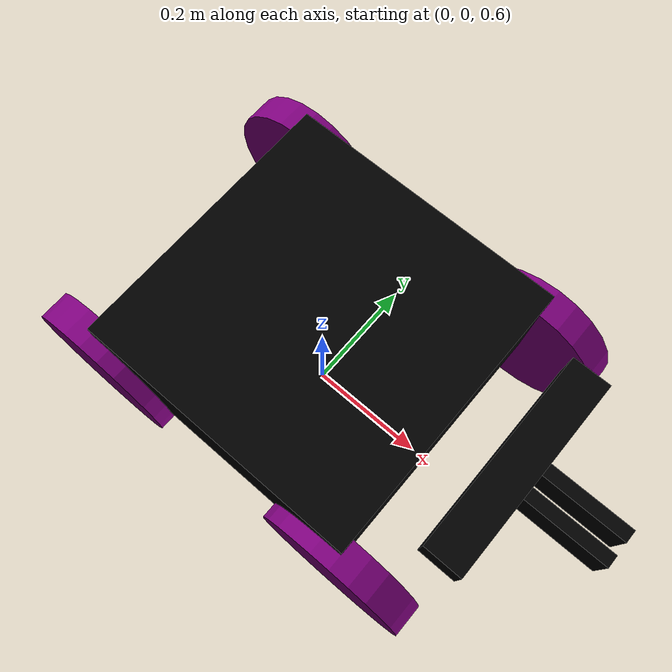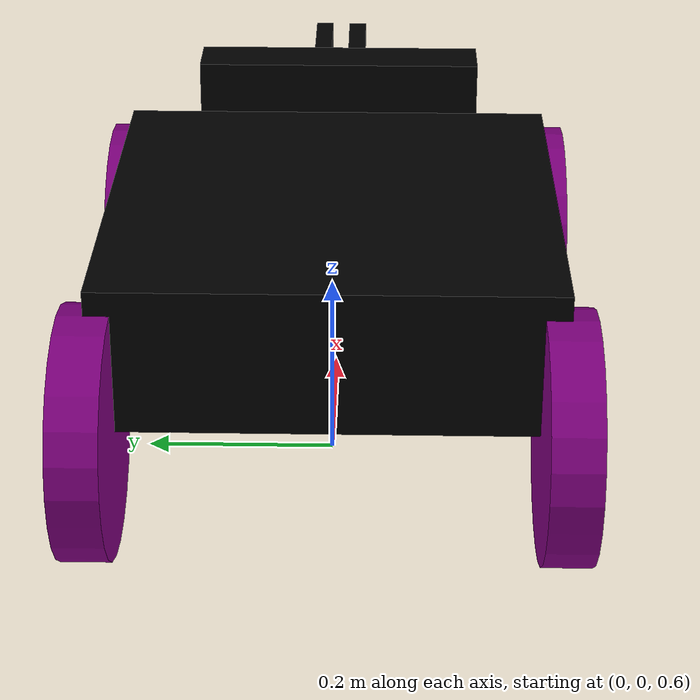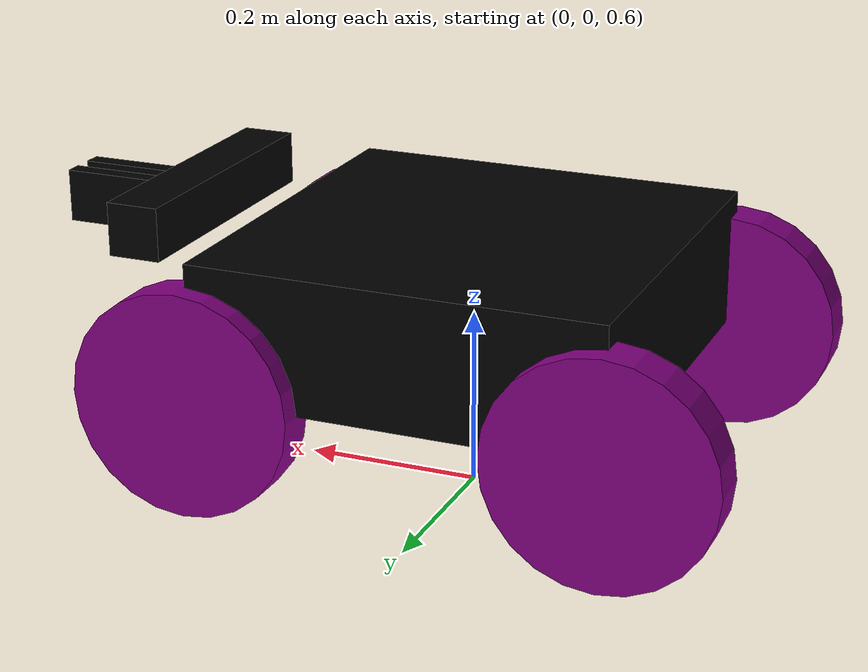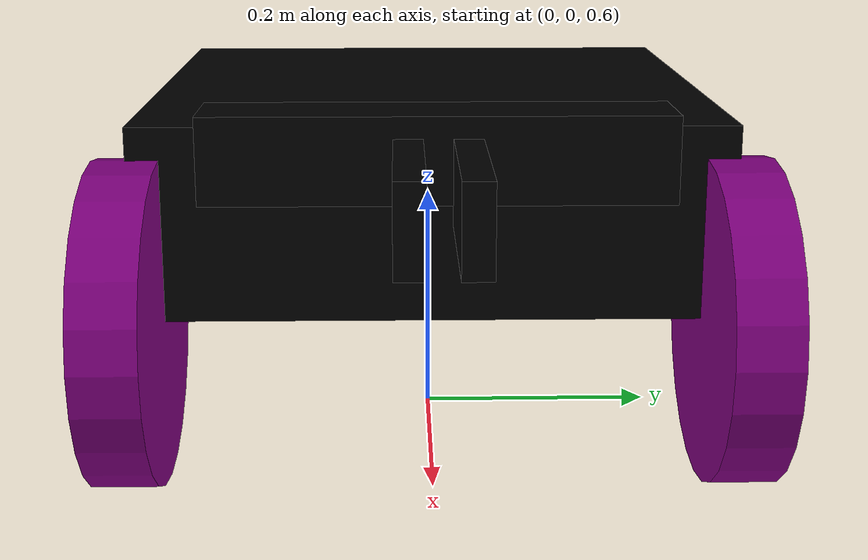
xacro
<?xml version="1.0"?>
<robot xmlns:xacro="http://www.ros.org/wiki/xacro" >

    <material name="white">
        <color rgba="1 1 1 1" />
    </material>

    <material name="orange">
        <color rgba="1 0.3 0.1 1"/>
    </material>

    <material name="blue">
        <color rgba="0.2 0.2 1 1"/>
    </material>

    <material name="black">
        <color rgba="0 0 0 1"/>
    </material>

    <material name="red">
        <color rgba="1 0 0 1"/>
    </material>

    <!-- สีเพิ่มเติม -->

    <material name="green">
        <color rgba="0 1 0 1"/>
    </material>

    <material name="yellow">
        <color rgba="1 1 0 1"/>
    </material>

    <material name="purple">
        <color rgba="0.5 0 0.5 1"/>
    </material>

    <material name="cyan">
        <color rgba="0 1 1 1"/>
    </material>

    <material name="gray">
        <color rgba="0.5 0.5 0.5 1"/>
    </material>

    <!-- BASE LINK -->

    <link name="base_link"/>

    <joint name="chassis_joint" type="fixed">
        <parent link="base_link"/>
        <child link="chassis"/>
        <origin xyz="0 0 0.75" rpy="0 0 0"/>
    </joint>

    <link name="chassis">
        <visual>
            <origin xyz="0 0 0.075" rpy="0 0 0"/>
            <geometry>
                <box size="0.46 0.46 0.15"/>
            </geometry>
            <material name="black"/>
        </visual>
        <collision>
            <origin xyz="0 0 0.075" rpy="0 0 0"/>
            <geometry>
                <box size="0.46 0.46 0.15"/>
            </geometry>
        </collision>
        <xacro:inertial_box mass="0.1" x="0.46" y="0.46" z="0.15">
            <origin xyz="0 0 0.075" rpy="0 0 0"/>
        </xacro:inertial_box>
    </link>
    <gazebo reference="chassis">
        <material>Gazebo/black</material>
    </gazebo>

    <!-- BASE_FOOTPRINT LINK -->
    <joint name="base_footprint_joint" type="fixed">
        <parent link="base_link"/>
        <child link="base_footprint"/>
        <origin xyz="0 0 0" rpy="0 0 0"/>
    </joint>

    <link name="base_footprint">
    </link>

    <!-- LEFT FRONT WHEEL -->
    <joint name="left_wheel_joint" type="continuous">
        <parent link="chassis"/>
        <child link="left_wheel"/>
        <origin xyz="0.23 0.23 0" rpy="-1.5708 0 0"/>
        <axis xyz="0 0 1"/>
        <dynamics damping="0.5" friction="0.8"/>
    </joint>

    <link name="left_wheel">
        <visual>
            <geometry>
                <cylinder length="0.05" radius="0.125" />
            </geometry>
            <material name="purple"/>
        </visual>
        <collision>
            <geometry>
                <cylinder length="0.05" radius="0.125" />
            </geometry>
        </collision>
        <xacro:inertial_cylinder mass="0.1" length="0.05" radius="0.125">
            <origin xyz="0 0 0" rpy="0 0 0"/>
        </xacro:inertial_cylinder>
    </link>

    <gazebo reference="left_wheel">
        <material>Gazebo/purple</material>
        <mu1>0.8</mu1>
        <mu2>0.6</mu2>
        <plugin name="wheel_surface" filename="libgazebo_ros_surface_plugin.so">
            <rolling_resistance value="0.02"/>
            <friction value="0.9"/>
        </plugin>
    </gazebo>

    <!-- LEFT REAR WHEEL -->
    <joint name="left_wheel1_joint" type="continuous">
        <parent link="chassis"/>
        <child link="left_wheel1"/>
        <origin xyz="0.23 -0.23 0" rpy="-1.5708 0 0"/>
        <axis xyz="0 0 1"/>
        <dynamics damping="0.5" friction="0.8"/>
    </joint>

    <link name="left_wheel1">
        <visual>
            <geometry>2
                <cylinder length="0.05" radius="0.125" />
            </geometry>
            <material name="purple"/>
        </visual>
        <collision>
            <geometry>
                <cylinder length="0.05" radius="0.125" />
            </geometry>
        </collision>
        <xacro:inertial_cylinder mass="0.1" length="0.05" radius="0.125">
            <origin xyz="0 0 0" rpy="0 0 0"/>
        </xacro:inertial_cylinder>
    </link>

    <gazebo reference="left_wheel1">
        <material>Gazebo/purple</material>
        <mu1>0.8</mu1>
        <mu2>0.6</mu2>
        <plugin name="wheel_surface" filename="libgazebo_ros_surface_plugin.so">
            <rolling_resistance value="0.02"/>
            <friction value="0.9"/>
        </plugin>
    </gazebo>

    <!-- RIGHT FRONT WHEEL -->
    <joint name="right_wheel_joint" type="continuous">
        <parent link="chassis"/>
        <child link="right_wheel"/>
        <origin xyz="-0.23 0.23 0" rpy="1.5708 0 0"/>
        <axis xyz="0 0 -1"/>
        <dynamics damping="0.5" friction="0.8"/>
    </joint>

    <link name="right_wheel">
        <visual>
            <geometry>
                <cylinder length="0.05" radius="0.125" />
            </geometry>
            <material name="purple"/>
        </visual>
        <collision>
            <geometry>
                <cylinder length="0.05" radius="0.125" />
            </geometry>
        </collision>
        <xacro:inertial_cylinder mass="0.1" length="0.05" radius="0.125">
            <origin xyz="0 0 0" rpy="0 0 0"/>
        </xacro:inertial_cylinder>
    </link>

    <gazebo reference="right_wheel">
        <material>Gazebo/purple</material>
        <mu1>0.8</mu1>
        <mu2>0.6</mu2>
        <plugin name="wheel_surface" filename="libgazebo_ros_surface_plugin.so">
            <rolling_resistance value="0.02"/>
            <friction value="0.9"/>
        </plugin>
    </gazebo>

    <!-- RIGHT REAR WHEEL -->
    <joint name="right_wheel1_joint" type="continuous">
        <parent link="chassis"/>
        <child link="right_wheel1"/>
        <origin xyz="-0.23 -0.23 0" rpy="1.5708 0 0"/>
        <axis xyz="0 0 -1"/>
        <dynamics damping="0.5" friction="0.8"/>
    </joint>

    <link name="right_wheel1">
        <visual>
            <geometry>
                <cylinder length="0.05" radius="0.125" />
            </geometry>
            <material name="purple"/>
        </visual>
        <collision>
            <geometry>
                <cylinder length="0.05" radius="0.125" />
            </geometry>
        </collision>
        <xacro:inertial_cylinder mass="0.1" length="0.05" radius="0.125">
            <origin xyz="0 0 0" rpy="0 0 0"/>
        </xacro:inertial_cylinder>
    </link>

    <gazebo reference="right_wheel1">
        <material>Gazebo/purple</material>
        <mu1>0.8</mu1>
        <mu2>0.6</mu2>
        <plugin name="wheel_surface" filename="libgazebo_ros_surface_plugin.so">
            <rolling_resistance value="0.02"/>
            <friction value="0.9"/>
        </plugin>
    </gazebo>

    <!-- CASTER WHEEL -->

    <joint name="caster_wheel_joint" type="fixed">
        <parent link="chassis"/>
        <child link="caster_wheel"/>
        <origin xyz="0 0 0" rpy="0 0 0"/>
    </joint>

    <link name="caster_wheel">
        <visual>
            <geometry>
                <sphere radius="0.0" />
            </geometry>
            <material name="blue"/>
        </visual>
        <collision>
            <geometry>
                <sphere radius="0.0" />
            </geometry>
        </collision>
        <xacro:inertial_sphere mass="0.1" radius="0.0">
            <origin xyz="0 0 0" rpy="0 0 0"/>
        </xacro:inertial_sphere>
    </link>
    <gazebo reference="caster_wheel">
        <material>Gazebo/Blue</material>
        <mu1 value="0.5"/>
        <mu2 value="0.5"/>
    </gazebo>

    <!-- GRIPPER BASE -->

    <joint name="gripper_base_joint" type="prismatic">
        <parent link="chassis"/>
        <child link="gripper_base"/>
        <origin xyz="0.1 0 0.075" rpy="0 0 0"/>
        <axis xyz="0 0 1"/>
        <limit lower="-0.25" upper="0.1" effort="10.0" velocity="0.15"/>
        <dynamics damping="0.005" friction="2.0"/>
    </joint>

    <link name="gripper_base">
        <visual>
            <origin xyz="0.23 0 0.075" rpy="0 0 0"/>
            <geometry>
                <box size="0.06 0.32 0.06"/>
            </geometry>
            <material name="black"/>
        </visual>
        <collision>
            <origin xyz="0.23 0 0.075" rpy="0 0 0"/>
            <geometry>
                <box size="0.06 0.32 0.06"/>
            </geometry>
        </collision>
        <xacro:inertial_box mass="0.05" x="0.06" y="0.33" z="0.06">
            <origin xyz="0.23 0 0.075" rpy="0 0 0"/>
        </xacro:inertial_box>
    </link>
    <gazebo reference="gripper_base">
        <material>Gazebo/black</material>
    </gazebo>

        <!-- GRIPPER RIGHT ARM -->

    <joint name="gripper_R_joint" type="prismatic">
        <parent link="gripper_base"/>
        <child link="gripper_R"/>
        <origin xyz="0.16 0.01 0.03" rpy="0 0 0"/>
        <axis xyz="0 1 0"/>
        <limit lower="0" upper="0.16" effort="10.0" velocity="0.5"/>
        <dynamics damping="0.05" friction="1.0"/>
    </joint>

    <link name="gripper_R">
        <visual>
            <origin xyz="0.16 0.01 0.03" rpy="0 0 0"/>
            <geometry>
                <box size="0.14 0.02 0.06"/>
            </geometry>
            <material name="black"/>
        </visual>
        <collision>
            <origin xyz="0.16 0.01 0.03" rpy="0 0 0"/>
            <geometry>
                <box size="0.14 0.02 0.06"/>
            </geometry>
        </collision>
        <xacro:inertial_box mass="0.05" x="0.14" y="0.02" z="0.06">
            <origin xyz="0.16 0.01 0.03" rpy="0 0 0"/>
        </xacro:inertial_box>
    </link>
    <gazebo reference="gripper_R">
        <material>Gazebo/black</material>
    </gazebo>

        <!-- GRIPPER LEFT ARM -->

    <joint name="gripper_L_joint" type="prismatic">
        <parent link="gripper_base"/>
        <child link="gripper_L"/>
        <origin xyz="0.16 -0.01 0.03" rpy="0 0 0"/>
        <axis xyz="0 -1 0"/>
        <limit lower="0" upper="0.16" effort="10.0" velocity="0.5"/>
        <dynamics damping="0.05" friction="1.0"/>
    </joint>

    <link name="gripper_L">
        <visual>
            <origin xyz="0.16 -0.01 0.03" rpy="0 0 0"/>
            <geometry>
                <box size="0.14 0.02 0.06"/>
            </geometry>
            <material name="black"/>
        </visual>
        <collision>
            <origin xyz="0.16 -0.01 0.03" rpy="0 0 0"/>
            <geometry>
                <box size="0.14 0.02 0.06"/>
            </geometry>
        </collision>
        <xacro:inertial_box mass="0.05" x="0.14" y="0.02" z="0.06">
            <origin xyz="0.16 -0.01 0.03" rpy="0 0 0"/>
        </xacro:inertial_box>
    </link>
    <gazebo reference="gripper_L">
        <material>Gazebo/black</material>
    </gazebo>

</robot>
